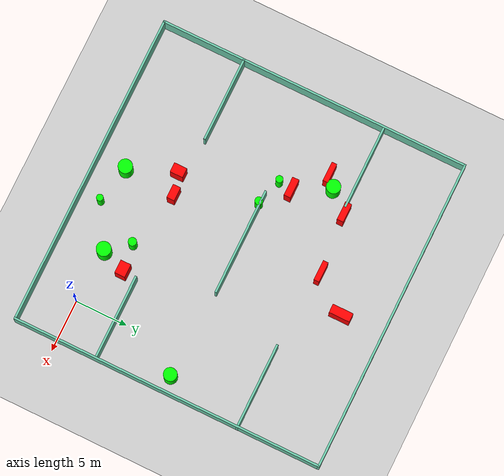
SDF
<sdf version="1.7">
 <world name="default">
  <light name="sun" type="directional">
   <pose>0 0 10 0 -0 0</pose>
   <diffuse>0.8 0.8 0.8 1</diffuse>
   <specular>0.2 0.2 0.2 1</specular>
   <attenuation>
    <range>1000</range>
    <constant>0.9</constant>
    <linear>0.01</linear>
    <quadratic>0.001</quadratic>
   </attenuation>
   <direction>-0.5 0.1 -0.9</direction>
   <spot><inner_angle>0</inner_angle><outer_angle>0</outer_angle><falloff>0</falloff></spot>
  </light>
  <model name="ground_plane">
   <static>1</static>
   <link name="link">
    <collision name="collision">
     <geometry><plane><normal>0 0 1</normal><size>100 100</size></plane></geometry>
     <surface>
      <contact><collide_bitmask>65535</collide_bitmask></contact>
      <friction><ode><mu>100</mu><mu2>50</mu2></ode></friction>
     </surface>
    </collision>
    <visual name="visual">
     <cast_shadows>0</cast_shadows>
     <geometry><plane><normal>0 0 1</normal><size>100 100</size></plane></geometry>
     <material>
      <script><uri>file://media/materials/scripts/gazebo.material</uri><name>Gazebo/Grey</name></script>
     </material>
    </visual>
   </link>
  </model>
  <gravity>0 0 -9.8</gravity>
  <magnetic_field>6e-06 2.3e-05 -4.2e-05</magnetic_field>
  <atmosphere type="adiabatic"/>
  <physics type="ode">
   <max_step_size>0.001</max_step_size>
   <real_time_factor>1</real_time_factor>
   <real_time_update_rate>1000</real_time_update_rate>
  </physics>
  <scene><ambient>0.4 0.4 0.4 1</ambient><background>0.7 0.7 0.7 1</background><shadows>1</shadows></scene>
  <spherical_coordinates>
   <surface_model>EARTH_WGS84</surface_model>
   <latitude_deg>0</latitude_deg>
   <longitude_deg>0</longitude_deg>
   <elevation>0</elevation>
   <heading_deg>0</heading_deg>
  </spherical_coordinates>
  <model name="my_base_walls">
   <link name="Wall_10">
    <collision name="Wall_10_Collision">
     <geometry><box><size>8.2 0.2 2.5</size></box></geometry>
     <pose>0 0 1.25 0 -0 0</pose>
    </collision>
    <visual name="Wall_10_Visual">
     <pose>0 0 1.25 0 -0 0</pose>
     <geometry><box><size>8.2 0.2 2.5</size></box></geometry>
     <material>
      <script><uri>file://media/materials/scripts/gazebo.material</uri><name>Gazebo/Grey</name></script>
      <ambient>0.435294 0.796078 0.67451 1</ambient>
     </material>
     <meta><layer>0</layer></meta>
    </visual>
    <pose>-11 -7 0 0 -0 0</pose>
   </link>
   <link name="Wall_12">
    <collision name="Wall_12_Collision">
     <geometry><box><size>8.2 0.2 2.5</size></box></geometry>
     <pose>0 0 1.25 0 -0 0</pose>
    </collision>
    <visual name="Wall_12_Visual">
     <pose>0 0 1.25 0 -0 0</pose>
     <geometry><box><size>8.2 0.2 2.5</size></box></geometry>
     <material>
      <script><uri>file://media/materials/scripts/gazebo.material</uri><name>Gazebo/Grey</name></script>
      <ambient>0.435294 0.796078 0.67451 1</ambient>
     </material>
     <meta><layer>0</layer></meta>
    </visual>
    <pose>-11 7 0 0 -0 0</pose>
   </link>
   <link name="Wall_14">
    <collision name="Wall_14_Collision">
     <geometry><box><size>8.2 0.2 2.5</size></box></geometry>
     <pose>0 0 1.25 0 -0 0</pose>
    </collision>
    <visual name="Wall_14_Visual">
     <pose>0 0 1.25 0 -0 0</pose>
     <geometry><box><size>8.2 0.2 2.5</size></box></geometry>
     <material>
      <script><uri>file://media/materials/scripts/gazebo.material</uri><name>Gazebo/Grey</name></script>
      <ambient>0.435294 0.796078 0.67451 1</ambient>
     </material>
     <meta><layer>0</layer></meta>
    </visual>
    <pose>11 7 0 0 -0 3.14159</pose>
   </link>
   <link name="Wall_16">
    <collision name="Wall_16_Collision">
     <geometry><box><size>10.2 0.2 2.5</size></box></geometry>
     <pose>0 0 1.25 0 -0 0</pose>
    </collision>
    <visual name="Wall_16_Visual">
     <pose>0 0 1.25 0 -0 0</pose>
     <geometry><box><size>10.2 0.2 2.5</size></box></geometry>
     <material>
      <script><uri>file://media/materials/scripts/gazebo.material</uri><name>Gazebo/Grey</name></script>
      <ambient>0.435294 0.796078 0.67451 1</ambient>
     </material>
     <meta><layer>0</layer></meta>
    </visual>
    <pose>0 0 0 0 -0 3.14159</pose>
   </link>
   <link name="Wall_2">
    <collision name="Wall_2_Collision">
     <geometry><box><size>30.2 0.2 2.5</size></box></geometry>
     <pose>0 0 1.25 0 -0 0</pose>
    </collision>
    <visual name="Wall_2_Visual">
     <pose>0 0 1.25 0 -0 0</pose>
     <geometry><box><size>30.2 0.2 2.5</size></box></geometry>
     <material>
      <script><uri>file://media/materials/scripts/gazebo.material</uri><name>Gazebo/Grey</name></script>
      <ambient>0.435294 0.796078 0.67451 1</ambient>
     </material>
     <meta><layer>0</layer></meta>
    </visual>
    <pose>0 -15 0 0 -0 3.14159</pose>
   </link>
   <link name="Wall_3">
    <collision name="Wall_3_Collision">
     <geometry><box><size>30.2 0.2 2.5</size></box></geometry>
     <pose>0 0 1.25 0 -0 0</pose>
    </collision>
    <visual name="Wall_3_Visual">
     <pose>0 0 1.25 0 -0 0</pose>
     <geometry><box><size>30.2 0.2 2.5</size></box></geometry>
     <material>
      <script><uri>file://media/materials/scripts/gazebo.material</uri><name>Gazebo/Grey</name></script>
      <ambient>0.435294 0.796078 0.67451 1</ambient>
     </material>
     <meta><layer>0</layer></meta>
    </visual>
    <pose>-15 0 0 0 -0 1.5708</pose>
   </link>
   <link name="Wall_4">
    <collision name="Wall_4_Collision">
     <geometry><box><size>30.2 0.2 2.5</size></box></geometry>
     <pose>0 0 1.25 0 -0 0</pose>
    </collision>
    <visual name="Wall_4_Visual">
     <pose>0 0 1.25 0 -0 0</pose>
     <geometry><box><size>30.2 0.2 2.5</size></box></geometry>
     <material>
      <script><uri>file://media/materials/scripts/gazebo.material</uri><name>Gazebo/Grey</name></script>
      <ambient>0.435294 0.796078 0.67451 1</ambient>
     </material>
     <meta><layer>0</layer></meta>
    </visual>
    <pose>0 15 0 0 -0 0</pose>
   </link>
   <link name="Wall_6">
    <collision name="Wall_6_Collision">
     <geometry><box><size>30.2 0.2 2.5</size></box></geometry>
     <pose>0 0 1.25 0 -0 0</pose>
    </collision>
    <visual name="Wall_6_Visual">
     <pose>0 0 1.25 0 -0 0</pose>
     <geometry><box><size>30.2 0.2 2.5</size></box></geometry>
     <material>
      <script><uri>file://media/materials/scripts/gazebo.material</uri><name>Gazebo/Grey</name></script>
      <ambient>0.435294 0.796078 0.67451 1</ambient>
     </material>
     <meta><layer>0</layer></meta>
    </visual>
    <pose>15 0 0 0 -0 1.5708</pose>
   </link>
   <link name="Wall_8">
    <collision name="Wall_8_Collision">
     <geometry><box><size>8.2 0.2 2.5</size></box></geometry>
     <pose>0 0 1.25 0 -0 0</pose>
    </collision>
    <visual name="Wall_8_Visual">
     <pose>0 0 1.25 0 -0 0</pose>
     <geometry><box><size>8.2 0.2 2.5</size></box></geometry>
     <material>
      <script><uri>file://media/materials/scripts/gazebo.material</uri><name>Gazebo/Grey</name></script>
      <ambient>0.435294 0.796078 0.67451 1</ambient>
     </material>
     <meta><layer>0</layer></meta>
    </visual>
    <pose>11 -7 0 0 -0 3.14159</pose>
   </link>
   <static>1</static>
   <pose>-11 11 0 0 -0 0</pose>
  </model>
  <model name="cylinder1">
   <static>1</static>
   <link name="link">
    <inertial>
     <mass>1</mass>
     <inertia><ixx>0.5</ixx><ixy>0</ixy><ixz>0</ixz><iyy>0.5</iyy><iyz>0</iyz><izz>1</izz></inertia>
    </inertial>
    <collision name="collision">
     <geometry><cylinder><radius>0.3393121737247333</radius><length>2.5</length></cylinder></geometry>
    </collision>
    <visual name="visual">
     <geometry><cylinder><radius>0.3393121737247333</radius><length>2.5</length></cylinder></geometry>
     <material>
      <ambient>0 1 0 1</ambient>
      <diffuse>0 1 0 1</diffuse>
      <specular>0.1 0.1 0.1 1</specular>
      <emissive>0 0 0 0</emissive>
     </material>
    </visual>
   </link>
   <pose>-17.58619406982134 11.629909456611955 1.25 0 0 0</pose>
  </model>
  <model name="cylinder2">
   <static>1</static>
   <link name="link">
    <inertial>
     <mass>1</mass>
     <inertia><ixx>0.5</ixx><ixy>0</ixy><ixz>0</ixz><iyy>0.5</iyy><iyz>0</iyz><izz>1</izz></inertia>
    </inertial>
    <collision name="collision">
     <geometry><cylinder><radius>0.6740215366415376</radius><length>2.5</length></cylinder></geometry>
    </collision>
    <visual name="visual">
     <geometry><cylinder><radius>0.6740215366415376</radius><length>2.5</length></cylinder></geometry>
     <material>
      <ambient>0 1 0 1</ambient>
      <diffuse>0 1 0 1</diffuse>
      <specular>0.1 0.1 0.1 1</specular>
      <emissive>0 0 0 0</emissive>
     </material>
    </visual>
   </link>
   <pose>-12.586916494708447 -1.2701460122685901 1.25 0 0 0</pose>
  </model>
  <model name="cylinder3">
   <static>1</static>
   <link name="link">
    <inertial>
     <mass>1</mass>
     <inertia><ixx>0.5</ixx><ixy>0</ixy><ixz>0</ixz><iyy>0.5</iyy><iyz>0</iyz><izz>1</izz></inertia>
    </inertial>
    <collision name="collision">
     <geometry><cylinder><radius>0.3202332019786044</radius><length>2.5</length></cylinder></geometry>
    </collision>
    <visual name="visual">
     <geometry><cylinder><radius>0.3202332019786044</radius><length>2.5</length></cylinder></geometry>
     <material>
      <ambient>0 1 0 1</ambient>
      <diffuse>0 1 0 1</diffuse>
      <specular>0.1 0.1 0.1 1</specular>
      <emissive>0 0 0 0</emissive>
     </material>
    </visual>
   </link>
   <pose>-9.041382531941855 -2.054929512317042 1.25 0 0 0</pose>
  </model>
  <model name="cylinder4">
   <static>1</static>
   <link name="link">
    <inertial>
     <mass>1</mass>
     <inertia><ixx>0.5</ixx><ixy>0</ixy><ixz>0</ixz><iyy>0.5</iyy><iyz>0</iyz><izz>1</izz></inertia>
    </inertial>
    <collision name="collision">
     <geometry><cylinder><radius>0.6720585117782353</radius><length>2.5</length></cylinder></geometry>
    </collision>
    <visual name="visual">
     <geometry><cylinder><radius>0.6720585117782353</radius><length>2.5</length></cylinder></geometry>
     <material>
      <ambient>0 1 0 1</ambient>
      <diffuse>0 1 0 1</diffuse>
      <specular>0.1 0.1 0.1 1</specular>
      <emissive>0 0 0 0</emissive>
     </material>
    </visual>
   </link>
   <pose>-19.10617910624257 16.275969742950927 1.25 0 0 0</pose>
  </model>
  <model name="cylinder5">
   <static>1</static>
   <link name="link">
    <inertial>
     <mass>1</mass>
     <inertia><ixx>0.5</ixx><ixy>0</ixy><ixz>0</ixz><iyy>0.5</iyy><iyz>0</iyz><izz>1</izz></inertia>
    </inertial>
    <collision name="collision">
     <geometry><cylinder><radius>0.6934504120675161</radius><length>2.5</length></cylinder></geometry>
    </collision>
    <visual name="visual">
     <geometry><cylinder><radius>0.6934504120675161</radius><length>2.5</length></cylinder></geometry>
     <material>
      <ambient>0 1 0 1</ambient>
      <diffuse>0 1 0 1</diffuse>
      <specular>0.1 0.1 0.1 1</specular>
      <emissive>0 0 0 0</emissive>
     </material>
    </visual>
   </link>
   <pose>-5.037918100743726 0.316034641624686 1.25 0 0 0</pose>
  </model>
  <model name="cylinder6">
   <static>1</static>
   <link name="link">
    <inertial>
     <mass>1</mass>
     <inertia><ixx>0.5</ixx><ixy>0</ixy><ixz>0</ixz><iyy>0.5</iyy><iyz>0</iyz><izz>1</izz></inertia>
    </inertial>
    <collision name="collision">
     <geometry><cylinder><radius>0.3744574536002958</radius><length>2.5</length></cylinder></geometry>
    </collision>
    <visual name="visual">
     <geometry><cylinder><radius>0.3744574536002958</radius><length>2.5</length></cylinder></geometry>
     <material>
      <ambient>0 1 0 1</ambient>
      <diffuse>0 1 0 1</diffuse>
      <specular>0.1 0.1 0.1 1</specular>
      <emissive>0 0 0 0</emissive>
     </material>
    </visual>
   </link>
   <pose>-15.009662819770117 10.839200198478457 1.25 0 0 0</pose>
  </model>
  <model name="cylinder7">
   <static>1</static>
   <link name="link">
    <inertial>
     <mass>1</mass>
     <inertia><ixx>0.5</ixx><ixy>0</ixy><ixz>0</ixz><iyy>0.5</iyy><iyz>0</iyz><izz>1</izz></inertia>
    </inertial>
    <collision name="collision">
     <geometry><cylinder><radius>0.6343928642818213</radius><length>2.5</length></cylinder></geometry>
    </collision>
    <visual name="visual">
     <geometry><cylinder><radius>0.6343928642818213</radius><length>2.5</length></cylinder></geometry>
     <material>
      <ambient>0 1 0 1</ambient>
      <diffuse>0 1 0 1</diffuse>
      <specular>0.1 0.1 0.1 1</specular>
      <emissive>0 0 0 0</emissive>
     </material>
    </visual>
   </link>
   <pose>2.4541045686209273 10.625186123101019 1.25 0 0 0</pose>
  </model>
  <model name="cylinder8">
   <static>1</static>
   <link name="link">
    <inertial>
     <mass>1</mass>
     <inertia><ixx>0.5</ixx><ixy>0</ixy><ixz>0</ixz><iyy>0.5</iyy><iyz>0</iyz><izz>1</izz></inertia>
    </inertial>
    <collision name="collision">
     <geometry><cylinder><radius>0.39934506707277917</radius><length>2.5</length></cylinder></geometry>
    </collision>
    <visual name="visual">
     <geometry><cylinder><radius>0.39934506707277917</radius><length>2.5</length></cylinder></geometry>
     <material>
      <ambient>0 1 0 1</ambient>
      <diffuse>0 1 0 1</diffuse>
      <specular>0.1 0.1 0.1 1</specular>
      <emissive>0 0 0 0</emissive>
     </material>
    </visual>
   </link>
   <pose>-6.737838988424972 2.3281745396054223 1.25 0 0 0</pose>
  </model>
  <model name="box1">
   <static>1</static>
   <link name="link">
    <inertial>
     <mass>1</mass>
     <inertia><ixx>0.083</ixx><ixy>0</ixy><ixz>0</ixz><iyy>0.083</iyy><iyz>0</iyz><izz>0.083</izz></inertia>
    </inertial>
    <collision name="collision">
     <geometry><box><size>0.832449325791156 1.9991810248036048 2.5</size></box></geometry>
    </collision>
    <visual name="visual">
     <geometry><box><size>0.832449325791156 1.9991810248036048 2.5</size></box></geometry>
     <material>
      <ambient>1 0 0 1</ambient>
      <diffuse>1 0 0 1</diffuse>
      <specular>0.1 0.1 0.1 1</specular>
      <emissive>0 0 0 0</emissive>
     </material>
    </visual>
    <sensor name="my_contact" type="contact">
     <contact><collision>box_collision</collision><topic>__default_topic__</topic></contact>
    </sensor>
   </link>
   <pose>-9.136731331642684 21.84559367130232 1.25 0 0 0</pose>
  </model>
  <model name="box2">
   <static>1</static>
   <link name="link">
    <inertial>
     <mass>1</mass>
     <inertia><ixx>0.083</ixx><ixy>0</ixy><ixz>0</ixz><iyy>0.083</iyy><iyz>0</iyz><izz>0.083</izz></inertia>
    </inertial>
    <collision name="collision">
     <geometry><box><size>1.8038045990777412 0.6461956100699635 2.5</size></box></geometry>
    </collision>
    <visual name="visual">
     <geometry><box><size>1.8038045990777412 0.6461956100699635 2.5</size></box></geometry>
     <material>
      <ambient>1 0 0 1</ambient>
      <diffuse>1 0 0 1</diffuse>
      <specular>0.1 0.1 0.1 1</specular>
      <emissive>0 0 0 0</emissive>
     </material>
    </visual>
    <sensor name="my_contact" type="contact">
     <contact><collision>box_collision</collision><topic>__default_topic__</topic></contact>
    </sensor>
   </link>
   <pose>-17.384418947032106 12.929306442837587 1.25 0 0 0</pose>
  </model>
  <model name="box3">
   <static>1</static>
   <link name="link">
    <inertial>
     <mass>1</mass>
     <inertia><ixx>0.083</ixx><ixy>0</ixy><ixz>0</ixz><iyy>0.083</iyy><iyz>0</iyz><izz>0.083</izz></inertia>
    </inertial>
    <collision name="collision">
     <geometry><box><size>1.9226663844190035 0.5122011948441538 2.5</size></box></geometry>
    </collision>
    <visual name="visual">
     <geometry><box><size>1.9226663844190035 0.5122011948441538 2.5</size></box></geometry>
     <material>
      <ambient>1 0 0 1</ambient>
      <diffuse>1 0 0 1</diffuse>
      <specular>0.1 0.1 0.1 1</specular>
      <emissive>0 0 0 0</emissive>
     </material>
    </visual>
    <sensor name="my_contact" type="contact">
     <contact><collision>box_collision</collision><topic>__default_topic__</topic></contact>
    </sensor>
   </link>
   <pose>-11.732722626392796 18.60891414845485 1.25 0 0 0</pose>
  </model>
  <model name="box4">
   <static>1</static>
   <link name="link">
    <inertial>
     <mass>1</mass>
     <inertia><ixx>0.083</ixx><ixy>0</ixy><ixz>0</ixz><iyy>0.083</iyy><iyz>0</iyz><izz>0.083</izz></inertia>
    </inertial>
    <collision name="collision">
     <geometry><box><size>0.9182312037172379 1.2556849154453602 2.5</size></box></geometry>
    </collision>
    <visual name="visual">
     <geometry><box><size>0.9182312037172379 1.2556849154453602 2.5</size></box></geometry>
     <material>
      <ambient>1 0 0 1</ambient>
      <diffuse>1 0 0 1</diffuse>
      <specular>0.1 0.1 0.1 1</specular>
      <emissive>0 0 0 0</emissive>
     </material>
    </visual>
    <sensor name="my_contact" type="contact">
     <contact><collision>box_collision</collision><topic>__default_topic__</topic></contact>
    </sensor>
   </link>
   <pose>-14.359255494049961 3.159579260402893 1.25 0 0 0</pose>
  </model>
  <model name="box5">
   <static>1</static>
   <link name="link">
    <inertial>
     <mass>1</mass>
     <inertia><ixx>0.083</ixx><ixy>0</ixy><ixz>0</ixz><iyy>0.083</iyy><iyz>0</iyz><izz>0.083</izz></inertia>
    </inertial>
    <collision name="collision">
     <geometry><box><size>1.861614064034707 0.5038816041266075 2.5</size></box></geometry>
    </collision>
    <visual name="visual">
     <geometry><box><size>1.861614064034707 0.5038816041266075 2.5</size></box></geometry>
     <material>
      <ambient>1 0 0 1</ambient>
      <diffuse>1 0 0 1</diffuse>
      <specular>0.1 0.1 0.1 1</specular>
      <emissive>0 0 0 0</emissive>
     </material>
    </visual>
    <sensor name="my_contact" type="contact">
     <contact><collision>box_collision</collision><topic>__default_topic__</topic></contact>
    </sensor>
   </link>
   <pose>-20.118456016649606 15.421810710702289 1.25 0 0 0</pose>
  </model>
  <model name="box6">
   <static>1</static>
   <link name="link">
    <inertial>
     <mass>1</mass>
     <inertia><ixx>0.083</ixx><ixy>0</ixy><ixz>0</ixz><iyy>0.083</iyy><iyz>0</iyz><izz>0.083</izz></inertia>
    </inertial>
    <collision name="collision">
     <geometry><box><size>1.783830862628842 0.6226152186425963 2.5</size></box></geometry>
    </collision>
    <visual name="visual">
     <geometry><box><size>1.783830862628842 0.6226152186425963 2.5</size></box></geometry>
     <material>
      <ambient>1 0 0 1</ambient>
      <diffuse>1 0 0 1</diffuse>
      <specular>0.1 0.1 0.1 1</specular>
      <emissive>0 0 0 0</emissive>
     </material>
    </visual>
    <sensor name="my_contact" type="contact">
     <contact><collision>box_collision</collision><topic>__default_topic__</topic></contact>
    </sensor>
   </link>
   <pose>-17.463710855314655 18.141055593308014 1.25 0 0 0</pose>
  </model>
  <model name="box7">
   <static>1</static>
   <link name="link">
    <inertial>
     <mass>1</mass>
     <inertia><ixx>0.083</ixx><ixy>0</ixy><ixz>0</ixz><iyy>0.083</iyy><iyz>0</iyz><izz>0.083</izz></inertia>
    </inertial>
    <collision name="collision">
     <geometry><box><size>1.2708372671419215 1.0081035837904038 2.5</size></box></geometry>
    </collision>
    <visual name="visual">
     <geometry><box><size>1.2708372671419215 1.0081035837904038 2.5</size></box></geometry>
     <material>
      <ambient>1 0 0 1</ambient>
      <diffuse>1 0 0 1</diffuse>
      <specular>0.1 0.1 0.1 1</specular>
      <emissive>0 0 0 0</emissive>
     </material>
    </visual>
    <sensor name="my_contact" type="contact">
     <contact><collision>box_collision</collision><topic>__default_topic__</topic></contact>
    </sensor>
   </link>
   <pose>-4.188754366061817 2.6338480464793834 1.25 0 0 0</pose>
  </model>
  <model name="box8">
   <static>1</static>
   <link name="link">
    <inertial>
     <mass>1</mass>
     <inertia><ixx>0.083</ixx><ixy>0</ixy><ixz>0</ixz><iyy>0.083</iyy><iyz>0</iyz><izz>0.083</izz></inertia>
    </inertial>
    <collision name="collision">
     <geometry><box><size>1.3293163741338296 0.7347604148309572 2.5</size></box></geometry>
    </collision>
    <visual name="visual">
     <geometry><box><size>1.3293163741338296 0.7347604148309572 2.5</size></box></geometry>
     <material>
      <ambient>1 0 0 1</ambient>
      <diffuse>1 0 0 1</diffuse>
      <specular>0.1 0.1 0.1 1</specular>
      <emissive>0 0 0 0</emissive>
     </material>
    </visual>
    <sensor name="my_contact" type="contact">
     <contact><collision>box_collision</collision><topic>__default_topic__</topic></contact>
    </sensor>
   </link>
   <pose>-12.342494102545572 3.663771441032649 1.25 0 0 0</pose>
  </model>
 </world>
</sdf>
